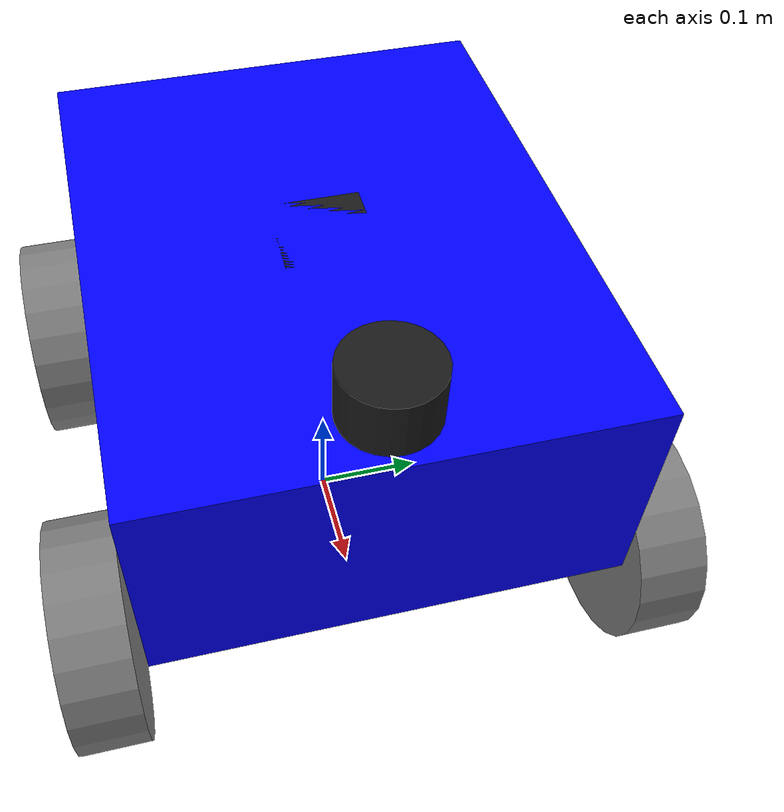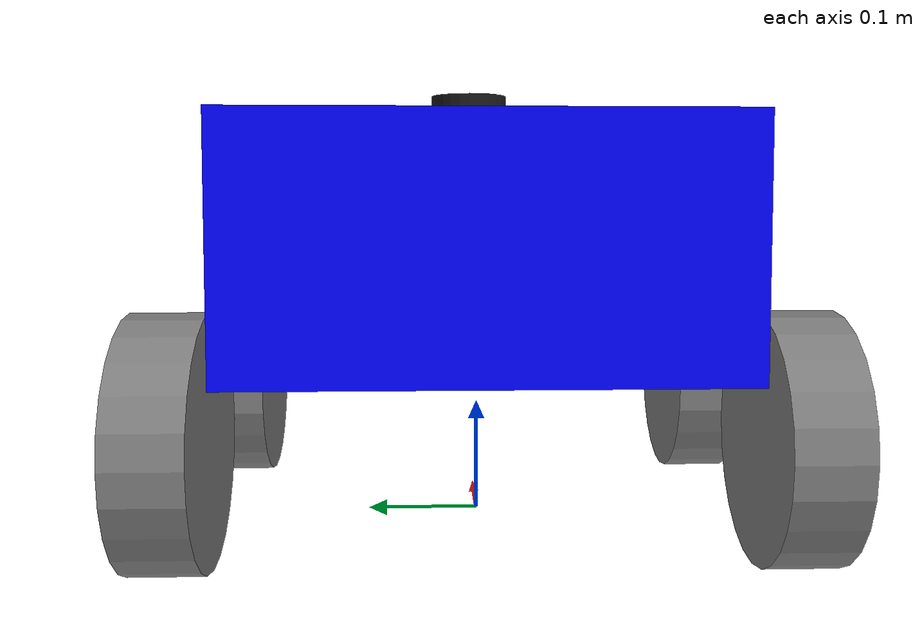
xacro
<?xml version="1.0"?>

<robot xmlns:xacro="http://www.ros.org/wiki/xacro" name="migro">

  <!-- Includes -->

  <xacro:include filename="properties.xacro"/>
  <xacro:include filename="materials.xacro"/>
  <xacro:include filename="chassis.xacro"/>
  <xacro:include filename="camera.xacro"/>
  <xacro:include filename="lidar.xacro"/>
  <xacro:include filename="macros.xacro"/>
  <xacro:include filename="ros2_control.xacro"/>

   <!-- Wheels -->

   <xacro:wheel
    name="left_front_wheel"
    x="${wheel_x}"
    y="${wheel_y}"
    z="${wheel_z}"/>

<xacro:wheel
    name="right_front_wheel"
    x="${wheel_x}"
    y="${-wheel_y}"
    z="${wheel_z}"/>

<xacro:wheel
    name="left_rear_wheel"
    x="${-wheel_x}"
    y="${wheel_y}"
    z="${wheel_z}"/>

<xacro:wheel
    name="right_rear_wheel"
    x="${-wheel_x}"
    y="${-wheel_y}"
    z="${wheel_z}"/>

</robot>

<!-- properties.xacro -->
<robot xmlns:xacro="http://www.ros.org/wiki/xacro">

  <!-- Robot Properties -->

  <!-- Chassis -->
  <xacro:property name="chassis_length" value="0.5"/>
  <xacro:property name="chassis_width" value="0.4"/>
  <xacro:property name="chassis_height" value="0.2"/>

  <!-- Wheels -->
  <xacro:property name="wheel_radius" value="0.10"/>
  <xacro:property name="wheel_width" value="0.06"/>

  <xacro:property name="wheel_x" value="0.18"/>
  <xacro:property name="wheel_y" value="0.24"/>
  <xacro:property name="wheel_z" value="${wheel_radius}"/>

  <!-- Ground Clearance -->
  <xacro:property name="ground_clearance" value="0.05"/>

  <!-- Body Height -->
  <xacro:property
      name="body_z"
      value="${wheel_radius + ground_clearance + chassis_height/2}"/>

  <!-- Camera -->
  <xacro:property name="camera_length" value="0.08"/>
  <xacro:property name="camera_width" value="0.08"/>
  <xacro:property name="camera_height" value="0.05"/>

  <xacro:property name="camera_x" value="0.0"/>
  <xacro:property name="camera_y" value="0.0"/>
  <xacro:property
      name="camera_z"
      value="${body_z + chassis_height/2 - 0.05}"/>

  <!-- LIDAR -->
  <xacro:property name="lidar_radius" value="0.04"/>
  <xacro:property name="lidar_height" value="0.05"/>

  <xacro:property name="lidar_x" value="${chassis_length/2 - 0.05}"/>
  <xacro:property name="lidar_y" value="0.0"/>
  <xacro:property
     name="lidar_z"
     value="${body_z + chassis_height/2 + lidar_height/2}"/>

</robot>

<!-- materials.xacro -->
<robot xmlns:xacro="http://www.ros.org/wiki/xacro">

  <material name="blue">
    <color rgba="0 0 1 1"/>
  </material>

  <material name="black">
    <color rgba="0.1 0.1 0.1 1"/>
  </material>

  <material name="grey">
    <color rgba="0.5 0.5 0.5 1"/>
  </material>

</robot>

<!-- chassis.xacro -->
<robot xmlns:xacro="http://www.ros.org/wiki/xacro">

  <!-- Chassis -->

  <link name="base_link">

    <inertial>

     <origin xyz="0 0 ${body_z}" rpy="0 0 0"/>

     <mass value="5.0"/>

     <inertia
      ixx="0.08"
      ixy="0.0"
      ixz="0.0"
      iyy="0.12"
      iyz="0.0"
      izz="0.15"/>

    </inertial>

    <visual>

      <origin xyz="0 0 ${body_z}"/>

      <geometry>
        <box size="${chassis_length} ${chassis_width} ${chassis_height}"/>
      </geometry>

      <material name="blue"/>

    </visual>

    <collision>

      <origin xyz="0 0 ${body_z}"/>

      <geometry>
        <box size="${chassis_length} ${chassis_width} ${chassis_height}"/>
      </geometry>

    </collision>

  </link>

</robot>

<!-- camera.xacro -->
<robot xmlns:xacro="http://www.ros.org/wiki/xacro">

  <!-- Camera -->

  <link name="camera_link">

    <visual>

      <origin xyz="0 0 ${camera_height/2}"/>

      <geometry>
        <box size="${camera_length} ${camera_width} ${camera_height}"/>
      </geometry>

      <material name="black"/>

    </visual>

    <collision>

      <origin xyz="0 0 ${camera_height/2}"/>

      <geometry>
        <box size="${camera_length} ${camera_width} ${camera_height}"/>
      </geometry>

    </collision>

    <inertial>

      <origin xyz="0 0 0.025" rpy="0 0 0"/>

      <mass value="0.2"/>

      <inertia
          ixx="0.0001"
          ixy="0.0"
          ixz="0.0"
          iyy="0.0001"
          iyz="0.0"
          izz="0.0001"/>

    </inertial>

  </link>

  <joint name="camera_joint" type="fixed">

    <parent link="base_link"/>

    <child link="camera_link"/>

    <origin xyz="${camera_x} ${camera_y} ${camera_z}" rpy="0 0 0"/>

  </joint>

    <!-- Optical frame: rotates from URDF convention (x-forward, z-up)
       to camera/ROS convention (z-forward, x-right, y-down) -->
  <link name="camera_link_optical"/>

  <joint name="camera_optical_joint" type="fixed">
    <parent link="camera_link"/>
    <child link="camera_link_optical"/>
    <origin xyz="${camera_length/2 + 0.01} 0 ${camera_height/2}" rpy="${-pi/2} 0 ${-pi/2}"/>
  </joint>

 <gazebo reference="camera_link">
  <sensor name="camera_sensor" type="camera">
    <always_on>true</always_on>
    <update_rate>30</update_rate>
    <visualize>true</visualize>
    <topic>camera/image_raw</topic>
    <camera>
      <horizontal_fov>1.089</horizontal_fov>
      <image>
        <width>640</width>
        <height>480</height>
        <format>R8G8B8</format>
      </image>
      <clip>
        <near>0.05</near>
        <far>10.0</far>
      </clip>
      <optical_frame_id>camera_link_optical</optical_frame_id>
    </camera>
  </sensor>
 </gazebo>

</robot>

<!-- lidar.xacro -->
<robot xmlns:xacro="http://www.ros.org/wiki/xacro">

  <!-- LIDAR -->

  <link name="lidar_link">

    <visual>
      <origin xyz="0 0 0"/>
      <geometry>
        <cylinder radius="${lidar_radius}" length="${lidar_height}"/>
      </geometry>
      <material name="black"/>
    </visual>

    <collision>
      <origin xyz="0 0 0"/>
      <geometry>
        <cylinder radius="${lidar_radius}" length="${lidar_height}"/>
      </geometry>
    </collision>

    <inertial>
      <origin xyz="0 0 0" rpy="0 0 0"/>
      <mass value="0.15"/>
      <inertia
          ixx="0.0001"
          ixy="0.0"
          ixz="0.0"
          iyy="0.0001"
          iyz="0.0"
          izz="0.0001"/>
    </inertial>

  </link>

  <joint name="lidar_joint" type="fixed">
    <parent link="base_link"/>
    <child link="lidar_link"/>
    <origin xyz="${lidar_x} ${lidar_y} ${lidar_z}" rpy="0 0 0"/>
  </joint>

  <!-- Gazebo Sensor Plugin (gz-sim) -->

  <gazebo reference="lidar_link">
    <sensor name="lidar_sensor" type="gpu_lidar">

      <pose>0 0 0 0 0 0</pose>
      <topic>scan</topic>
      <gz_frame_id>lidar_link</gz_frame_id>
      <update_rate>10</update_rate>
      <always_on>true</always_on>
      <visualize>true</visualize>

      <lidar>
        <scan>
          <horizontal>
            <samples>360</samples>
            <resolution>1</resolution>
            <min_angle>-3.14159</min_angle>
            <max_angle>3.14159</max_angle>
          </horizontal>
        </scan>
        <range>
          <min>0.12</min>
          <max>10.0</max>
          <resolution>0.01</resolution>
        </range>
      </lidar>

    </sensor>
  </gazebo>

</robot>

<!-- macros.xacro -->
<robot xmlns:xacro="http://www.ros.org/wiki/xacro">

  <!-- Wheel Macro -->

  <xacro:macro name="wheel" params="name x y z">

    <link name="${name}">

      <visual>

        <origin xyz="0 0 0"/>

        <geometry>
          <cylinder
              radius="${wheel_radius}"
              length="${wheel_width}"/>
        </geometry>

        <material name="grey"/>

      </visual>

      <collision>

        <origin xyz="0 0 0"/>

        <geometry>
          <cylinder
              radius="${wheel_radius}"
              length="${wheel_width}"/>
        </geometry>

      </collision>

      <inertial>

        <origin xyz="0 0 0"/>

        <mass value="0.5"/>

        <inertia
            ixx="0.001"
            ixy="0.0"
            ixz="0.0"
            iyy="0.001"
            iyz="0.0"
            izz="0.001"/>

      </inertial>

    </link>

    <joint
        name="${name}_joint"
        type="continuous">

      <parent link="base_link"/>

      <child link="${name}"/>

      <origin
          xyz="${x} ${y} ${z}"
          rpy="1.5708 0 0"/>

      <!-- Wheel rotates about its local Y-axis -->
      <axis xyz="0 0 -1"/>

    </joint>

  </xacro:macro>

</robot>
